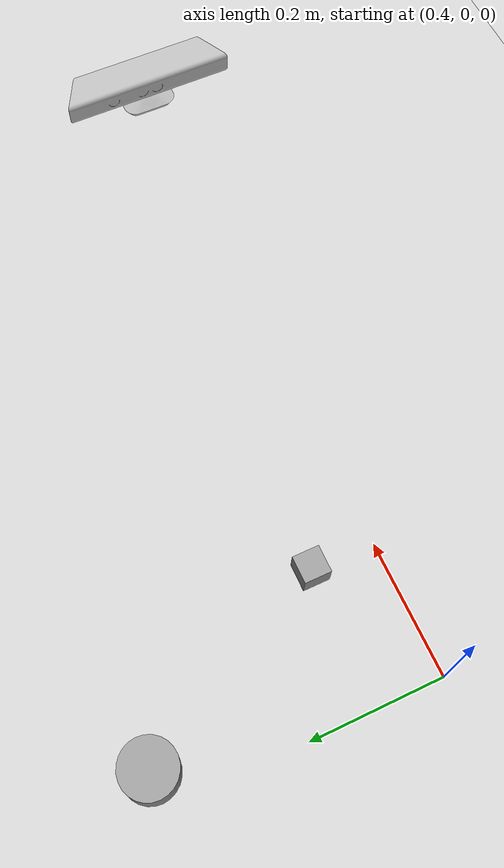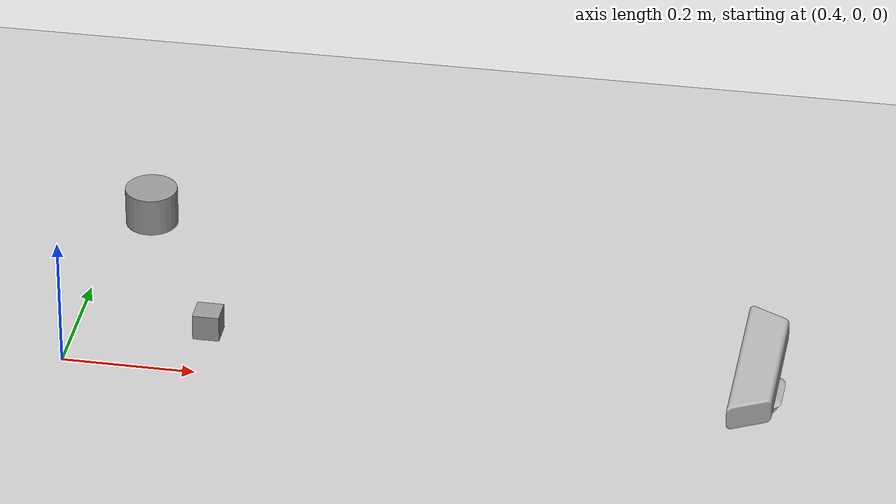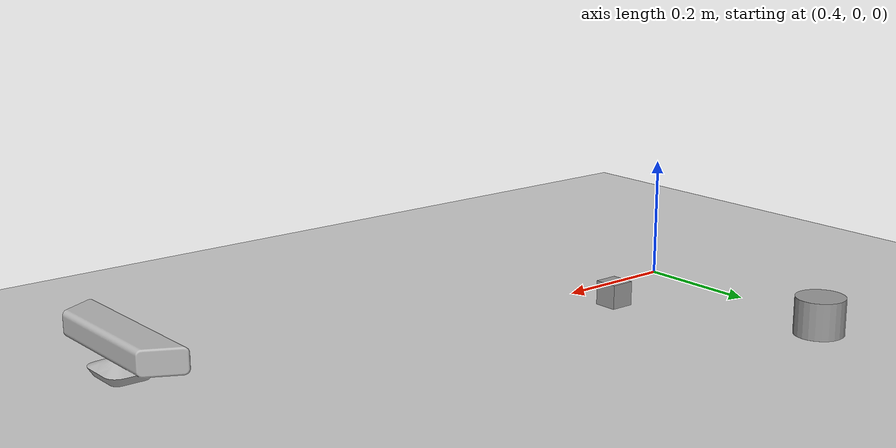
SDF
<sdf version="1.6">
 <world name="default">
  <light name="sun" type="directional">
   <pose>0 0 10 0 -0 0</pose>
   <diffuse>0.8 0.8 0.8 1</diffuse>
   <specular>0.1 0.1 0.1 1</specular>
   <attenuation>
    <range>1000</range>
    <constant>0.9</constant>
    <linear>0.01</linear>
    <quadratic>0.001</quadratic>
   </attenuation>
   <direction>-0.5 0.5 -1</direction>
  </light>
  <model name="ground_plane">
   <static>1</static>
   <link name="link">
    <collision name="collision">
     <geometry><plane><normal>0 0 1</normal><size>100 100</size></plane></geometry>
     <surface><friction><ode><mu>100</mu><mu2>50</mu2></ode></friction></surface>
    </collision>
    <visual name="visual">
     <cast_shadows>0</cast_shadows>
     <geometry><plane><normal>0 0 1</normal><size>100 100</size></plane></geometry>
     <material>
      <script><uri>file://media/materials/scripts/gazebo.material</uri><name>Gazebo/Grey</name></script>
     </material>
    </visual>
   </link>
  </model>
  <gravity>0 0 -9.8</gravity>
  <magnetic_field>6e-06 2.3e-05 -4.2e-05</magnetic_field>
  <atmosphere type="adiabatic"/>
  <physics name="default_physics" default="0" type="ode">
   <max_step_size>0.001</max_step_size>
   <real_time_factor>1</real_time_factor>
   <real_time_update_rate>1000</real_time_update_rate>
  </physics>
  <scene><ambient>0.4 0.4 0.4 1</ambient><background>0.7 0.7 0.7 1</background><shadows>1</shadows></scene>
  <spherical_coordinates>
   <surface_model>EARTH_WGS84</surface_model>
   <latitude_deg>0</latitude_deg>
   <longitude_deg>0</longitude_deg>
   <elevation>0</elevation>
   <heading_deg>0</heading_deg>
  </spherical_coordinates>
  <model name="kinect_ros">
   <link name="kinect_link">
    <inertial>
     <mass>0.1</mass>
     <inertia><ixx>1</ixx><ixy>0</ixy><ixz>0</ixz><iyy>1</iyy><iyz>0</iyz><izz>1</izz></inertia>
    </inertial>
    <sensor name="camera" type="depth">
     <update_rate>20</update_rate>
     <camera name="__default__">
      <horizontal_fov>1.0472</horizontal_fov>
      <image><width>640</width><height>480</height><format>R8G8B8</format></image>
      <clip><near>0.1</near><far>2</far></clip>
     </camera>
     <plugin name="camera_link_plugin" filename="libgazebo_ros_openni_kinect.so">
      <baseline>0.2</baseline>
      <alwaysOn>true</alwaysOn>
      <updateRate>0.0</updateRate>
      <cameraName>camera_ir</cameraName>
      <imageTopicName>/camera/depth/image_raw</imageTopicName>
      <cameraInfoTopicName>/camera/depth/camera_info</cameraInfoTopicName>
      <depthImageTopicName>/camera/depth/image_raw</depthImageTopicName>
      <depthImageInfoTopicName>/camera/depth/camera_info</depthImageInfoTopicName>
      <pointCloudTopicName>/camera/depth/points</pointCloudTopicName>
      <frameName>camera_link</frameName>
      <pointCloudCutoff>0.05</pointCloudCutoff>
      <distortionK1>0</distortionK1>
      <distortionK2>0</distortionK2>
      <distortionK3>0</distortionK3>
      <distortionT1>0</distortionT1>
      <distortionT2>0</distortionT2>
      <CxPrime>0</CxPrime>
      <Cx>0</Cx>
      <Cy>0</Cy>
      <focalLength>0</focalLength>
      <hackBaseline>0</hackBaseline>
     </plugin>
    </sensor>
    <visual name="kinect_visual">
     <geometry><mesh><uri>model://kinect/meshes/kinect.dae</uri><scale>1 1 1</scale></mesh></geometry>
    </visual>
    <collision name="collision">
     <geometry><box><size>0.073 0.276 0.072</size></box></geometry>
     <surface>
      <friction>
       <ode><mu>1</mu><mu2>1</mu2><fdir1>0 0 0</fdir1><slip1>0</slip1><slip2>0</slip2></ode>
       <torsional>
        <coefficient>1</coefficient>
        <patch_radius>0</patch_radius>
        <surface_radius>0</surface_radius>
        <use_patch_radius>1</use_patch_radius>
        <ode><slip>0</slip></ode>
       </torsional>
      </friction>
      <bounce><restitution_coefficient>0</restitution_coefficient><threshold>1e+06</threshold></bounce>
      <contact>
       <collide_without_contact>0</collide_without_contact>
       <collide_without_contact_bitmask>1</collide_without_contact_bitmask>
       <collide_bitmask>1</collide_bitmask>
       <ode>
        <soft_cfm>0</soft_cfm>
        <soft_erp>0.2</soft_erp>
        <kp>1e+13</kp>
        <kd>1</kd>
        <max_vel>0.01</max_vel>
        <min_depth>0</min_depth>
       </ode>
       <bullet>
        <split_impulse>1</split_impulse>
        <split_impulse_penetration_threshold>-0.01</split_impulse_penetration_threshold>
        <soft_cfm>0</soft_cfm>
        <soft_erp>0.2</soft_erp>
        <kp>1e+13</kp>
        <kd>1</kd>
       </bullet>
      </contact>
     </surface>
    </collision>
   </link>
   <static>1</static>
   <pose>1.4 0 0.1 0 -0 3.14</pose>
  </model>
  <model name="small_cube1">
   <link name="link">
    <inertial>
     <mass>1</mass>
     <inertia>
      <ixx>0.166667</ixx>
      <ixy>0</ixy>
      <ixz>0</ixz>
      <iyy>0.166667</iyy>
      <iyz>0</iyz>
      <izz>0.166667</izz>
     </inertia>
    </inertial>
    <visual name="visual">
     <geometry><box><size>0.04 0.04 0.04</size></box></geometry>
     <material>
      <script><name>Gazebo/Grey</name><uri>file://media/materials/scripts/gazebo.material</uri></script>
      <ambient>0.3 0.3 0.3 1</ambient>
      <diffuse>0.7 0.7 0.7 1</diffuse>
      <specular>0.01 0.01 0.01 1</specular>
      <emissive>0 0 0 1</emissive>
      <shader type="vertex"><normal_map>__default__</normal_map></shader>
     </material>
    </visual>
    <collision name="collision">
     <geometry><box><size>0.04 0.04 0.04</size></box></geometry>
     <surface>
      <friction>
       <ode><mu>1</mu><mu2>1</mu2><fdir1>0 0 0</fdir1><slip1>0</slip1><slip2>0</slip2></ode>
       <torsional>
        <coefficient>1</coefficient>
        <patch_radius>0</patch_radius>
        <surface_radius>0</surface_radius>
        <use_patch_radius>1</use_patch_radius>
        <ode><slip>0</slip></ode>
       </torsional>
      </friction>
      <bounce><restitution_coefficient>0</restitution_coefficient><threshold>1e+06</threshold></bounce>
      <contact>
       <collide_without_contact>0</collide_without_contact>
       <collide_without_contact_bitmask>1</collide_without_contact_bitmask>
       <collide_bitmask>1</collide_bitmask>
       <ode>
        <soft_cfm>0</soft_cfm>
        <soft_erp>0.2</soft_erp>
        <kp>1e+13</kp>
        <kd>1</kd>
        <max_vel>0.01</max_vel>
        <min_depth>0</min_depth>
       </ode>
       <bullet>
        <split_impulse>1</split_impulse>
        <split_impulse_penetration_threshold>-0.01</split_impulse_penetration_threshold>
        <soft_cfm>0</soft_cfm>
        <soft_erp>0.2</soft_erp>
        <kp>1e+13</kp>
        <kd>1</kd>
       </bullet>
      </contact>
     </surface>
    </collision>
   </link>
   <static>1</static>
   <pose>0.6 0.1 0.025 0 -0 0</pose>
  </model>
  <model name="small_cyl">
   <link name="link">
    <inertial>
     <mass>0.03</mass>
     <inertia><ixx>0.145833</ixx><ixy>0</ixy><ixz>0</ixz><iyy>0.145833</iyy><iyz>0</iyz><izz>0.125</izz></inertia>
    </inertial>
    <visual name="visual">
     <geometry><cylinder><radius>0.04</radius><length>0.06</length></cylinder></geometry>
     <material>
      <script><name>Gazebo/Grey</name><uri>file://media/materials/scripts/gazebo.material</uri></script>
      <ambient>0.3 0.3 0.3 1</ambient>
      <diffuse>0.7 0.7 0.7 1</diffuse>
      <specular>0.01 0.01 0.01 1</specular>
      <emissive>0 0 0 1</emissive>
      <shader type="vertex"><normal_map>__default__</normal_map></shader>
     </material>
    </visual>
    <collision name="collision">
     <geometry><cylinder><radius>0.04</radius><length>0.06</length></cylinder></geometry>
     <surface>
      <friction>
       <ode><mu>1</mu><mu2>1</mu2><fdir1>0 0 0</fdir1><slip1>0</slip1><slip2>0</slip2></ode>
       <torsional>
        <coefficient>1</coefficient>
        <patch_radius>0</patch_radius>
        <surface_radius>0</surface_radius>
        <use_patch_radius>1</use_patch_radius>
        <ode><slip>0</slip></ode>
       </torsional>
      </friction>
      <bounce><restitution_coefficient>0</restitution_coefficient><threshold>1e+06</threshold></bounce>
      <contact>
       <collide_without_contact>0</collide_without_contact>
       <collide_without_contact_bitmask>1</collide_without_contact_bitmask>
       <collide_bitmask>1</collide_bitmask>
       <ode>
        <soft_cfm>0</soft_cfm>
        <soft_erp>0.2</soft_erp>
        <kp>1e+13</kp>
        <kd>1</kd>
        <max_vel>0.01</max_vel>
        <min_depth>0</min_depth>
       </ode>
       <bullet>
        <split_impulse>1</split_impulse>
        <split_impulse_penetration_threshold>-0.01</split_impulse_penetration_threshold>
        <soft_cfm>0</soft_cfm>
        <soft_erp>0.2</soft_erp>
        <kp>1e+13</kp>
        <kd>1</kd>
       </bullet>
      </contact>
     </surface>
    </collision>
   </link>
   <static>1</static>
   <pose>0.45 0.4 0.03 0 -0 0</pose>
  </model>
 </world>
</sdf>
